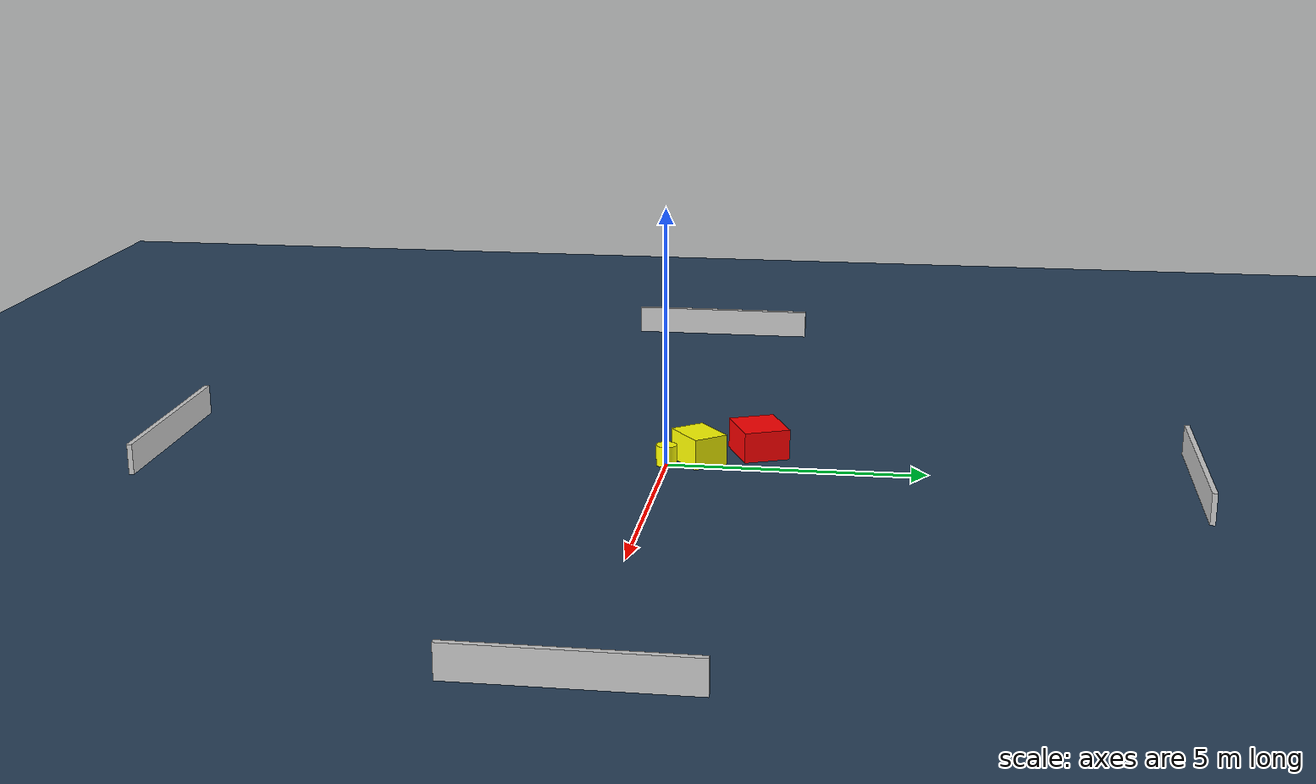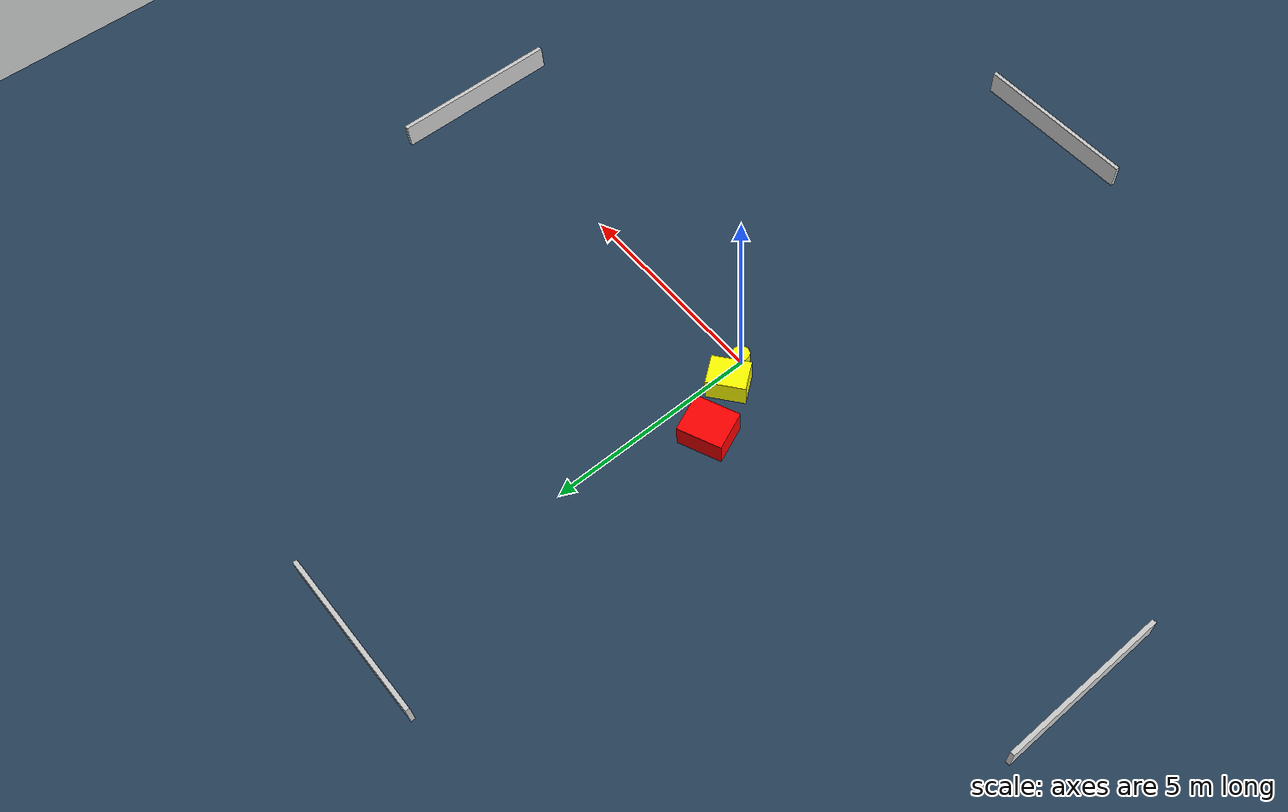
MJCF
<?xml version="1.0" ?>
<mujoco model="generated_environment">
  <option timestep="0.01" integrator="RK4" cone="elliptic"/>
  <default>
    <geom density="1"/>
  </default>
  <asset>
    <texture builtin="gradient" height="3072" name="skybox" rgb1="0.3 0.5 0.7" rgb2="0 0 0" type="skybox" width="512"/>
    <texture builtin="checker" height="300" name="groundplane" rgb1="0.2 0.3 0.4" rgb2="0.1 0.2 0.3" type="2d" width="300"/>
    <material name="groundplane" reflectance="0.2" texrepeat="5 5" texture="groundplane"/>
  </asset>
  <worldbody>
    <light dir="0 0 -1" directional="true" pos="0 0 1.5"/>
    <geom condim="3" friction="0.5 0.005 0.001" material="groundplane" name="floor" pos="0 0 0" size="0 0 0.05" type="plane"/>
    <body name="walls">
      <geom name="wall_1" condim="4" pos="-10.0 0.0 0.3" rgba="0.800000011920929 0.800000011920929 0.800000011920929 1.0" size="0.05 2.0 0.3" type="box"/>
      <geom name="wall_2" condim="4" pos="10.0 0.0 0.3" rgba="0.800000011920929 0.800000011920929 0.800000011920929 1.0" size="0.05 2.0 0.3" type="box"/>
      <geom name="wall_3" condim="4" pos="0.0 -10.0 0.3" rgba="0.800000011920929 0.800000011920929 0.800000011920929 1.0" size="2.0 0.05 0.3" type="box"/>
      <geom name="wall_4" condim="4" pos="0.0 10.0 0.3" rgba="0.800000011920929 0.800000011920929 0.800000011920929 1.0" size="2.0 0.05 0.3" type="box"/>
    </body>
    <body name="robot">
      <joint name="joint_x" type="slide" pos="0 0 0" axis="1 0 0"/>
      <joint name="joint_y" type="slide" pos="0 0 0" axis="0 1 0"/>
      <geom name="robot" type="cylinder" pos="0.0 0.0 0.2" size="0.2 0.2 0.0" mass="5.0" friction="1.0 0.005 0.0001" condim="4" rgba="1.0 1.0 0.0 1.0"/>
    </body>
    <body name="obstacle_1_movable">
      <geom name="obstacle_1_movable" condim="4" pos="-0.2843980525555869 0.6002004827744664 0.3" euler="0 0 217.91160708582973" friction="0.0 0.005 0.001" rgba="1.0 1.0 0.0 1.0" size="0.4504010857231259 0.3516204399230781 0.3" type="box" mass="0.1"/>
      <joint type="free"/>
    </body>
    <body name="obstacle_2_static">
      <geom name="obstacle_2_static" condim="4" pos="-0.9306362164517638 1.7099305650220609 0.3" euler="0 0 112.92228487127814" friction="0.0 0.005 0.001" rgba="1.0 0.0 0.0 1.0" size="0.45721756086341225 0.5292395837197889 0.3" type="box"/>
    </body>
  </worldbody>
  <actuator>
    <motor name="actuator_x" joint="joint_x" gear="1" ctrlrange="-1 1"/>
    <motor name="actuator_y" joint="joint_y" gear="1" ctrlrange="-1 1"/>
  </actuator>
</mujoco>
